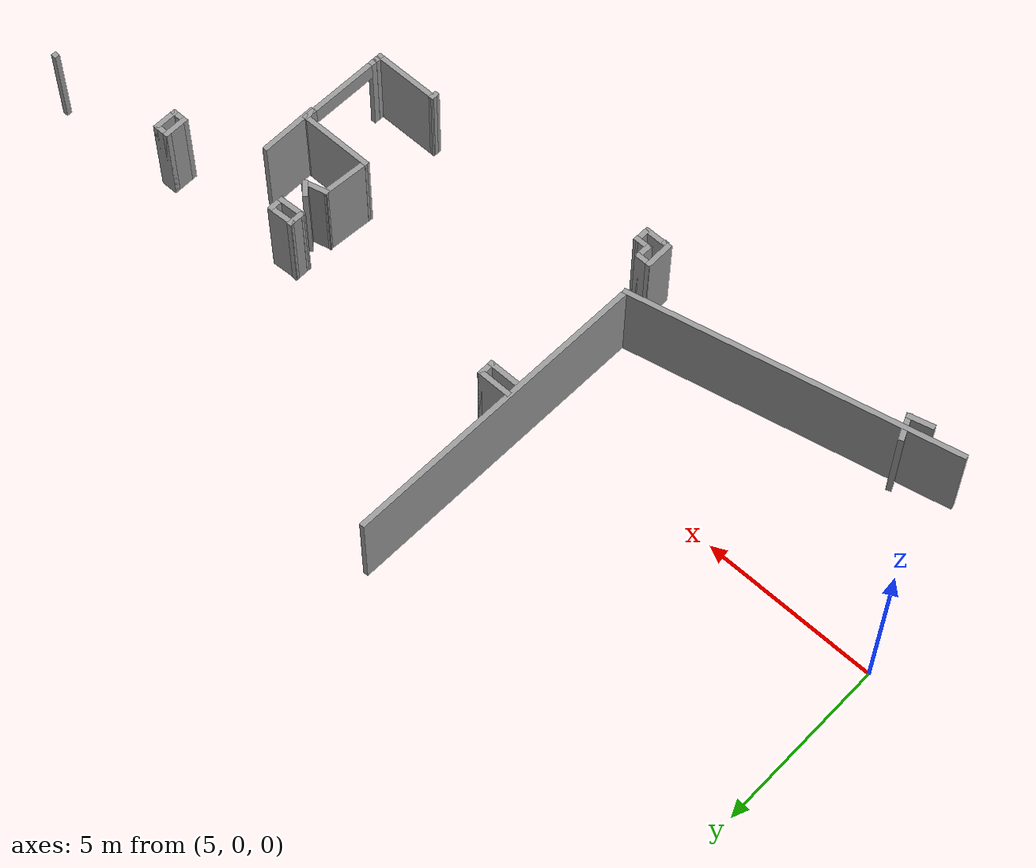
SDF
<sdf version="1.6">
 <model name="car_parking_underground_big_1">
  <pose>-9.36123 -7.37411 0 0 -0 0</pose>
  <link name="Wall_240">
   <collision name="Wall_240_Collision">
    <geometry><box><size>1 0.15 2.5</size></box></geometry>
    <pose>0 0 1.25 0 -0 0</pose>
   </collision>
   <visual name="Wall_240_Visual">
    <pose>0 0 1.25 0 -0 0</pose>
    <geometry><box><size>1 0.15 2.5</size></box></geometry>
    <material>
     <script><uri>file://media/materials/scripts/gazebo.material</uri><name>Gazebo/Grey</name></script>
     <ambient>1 1 1 1</ambient>
    </material>
    <meta><layer>0</layer></meta>
   </visual>
   <pose>25.3215 8.66077 0 0 -0 0</pose>
  </link>
  <link name="Wall_241">
   <collision name="Wall_241_Collision">
    <geometry><box><size>0.5 0.15 2.5</size></box></geometry>
    <pose>0 0 1.25 0 -0 0</pose>
   </collision>
   <visual name="Wall_241_Visual">
    <pose>0 0 1.25 0 -0 0</pose>
    <geometry><box><size>0.5 0.15 2.5</size></box></geometry>
    <material>
     <script><uri>file://media/materials/scripts/gazebo.material</uri><name>Gazebo/Grey</name></script>
     <ambient>1 1 1 1</ambient>
    </material>
    <meta><layer>0</layer></meta>
   </visual>
   <pose>25.7465 8.48577 0 0 -0 -1.5708</pose>
  </link>
  <link name="Wall_243">
   <collision name="Wall_243_Collision">
    <geometry><box><size>0.16 0.15 2.5</size></box></geometry>
    <pose>0 0 1.25 0 -0 0</pose>
   </collision>
   <visual name="Wall_243_Visual">
    <pose>0 0 1.25 0 -0 0</pose>
    <geometry><box><size>0.16 0.15 2.5</size></box></geometry>
    <material>
     <script><uri>file://media/materials/scripts/gazebo.material</uri><name>Gazebo/Grey</name></script>
     <ambient>1 1 1 1</ambient>
    </material>
    <meta><layer>0</layer></meta>
   </visual>
   <pose>40.3563 9.21528 0 0 -0 0</pose>
  </link>
  <link name="Wall_245">
   <collision name="Wall_245_Collision">
    <geometry><box><size>1 0.15 2.5</size></box></geometry>
    <pose>0 0 1.25 0 -0 0</pose>
   </collision>
   <visual name="Wall_245_Visual">
    <pose>0 0 1.25 0 -0 0</pose>
    <geometry><box><size>1 0.15 2.5</size></box></geometry>
    <material>
     <script><uri>file://media/materials/scripts/gazebo.material</uri><name>Gazebo/Grey</name></script>
     <ambient>1 1 1 1</ambient>
    </material>
    <meta><layer>0</layer></meta>
   </visual>
   <pose>25.3215 8.31077 0 0 -0 3.14159</pose>
  </link>
  <link name="Wall_268">
   <collision name="Wall_268_Collision">
    <geometry><box><size>0.15 0.15 2.5</size></box></geometry>
    <pose>0 0 1.25 0 -0 0</pose>
   </collision>
   <visual name="Wall_268_Visual">
    <pose>0 0 1.25 0 -0 0</pose>
    <geometry><box><size>0.15 0.15 2.5</size></box></geometry>
    <material>
     <script><uri>file://media/materials/scripts/gazebo.material</uri><name>Gazebo/Grey</name></script>
     <ambient>1 1 1 1</ambient>
    </material>
    <meta><layer>0</layer></meta>
   </visual>
   <pose>24.9942 2.81272 0 0 -0 0</pose>
  </link>
  <link name="Wall_269">
   <collision name="Wall_269_Collision">
    <geometry><box><size>0.15 0.15 2.5</size></box></geometry>
    <pose>0 0 1.25 0 -0 0</pose>
   </collision>
   <visual name="Wall_269_Visual">
    <pose>0 0 1.25 0 -0 0</pose>
    <geometry><box><size>0.15 0.15 2.5</size></box></geometry>
    <material>
     <script><uri>file://media/materials/scripts/gazebo.material</uri><name>Gazebo/Grey</name></script>
     <ambient>1 1 1 1</ambient>
    </material>
    <meta><layer>0</layer></meta>
   </visual>
   <pose>24.9942 2.81272 0 0 -0 0</pose>
  </link>
  <link name="Wall_270">
   <collision name="Wall_270_Collision">
    <geometry><box><size>0.15 0.15 2.5</size></box></geometry>
    <pose>0 0 1.25 0 -0 0</pose>
   </collision>
   <visual name="Wall_270_Visual">
    <pose>0 0 1.25 0 -0 0</pose>
    <geometry><box><size>0.15 0.15 2.5</size></box></geometry>
    <material>
     <script><uri>file://media/materials/scripts/gazebo.material</uri><name>Gazebo/Grey</name></script>
     <ambient>1 1 1 1</ambient>
    </material>
    <meta><layer>0</layer></meta>
   </visual>
   <pose>24.9942 2.81272 0 0 -0 0</pose>
  </link>
  <link name="Wall_272">
   <collision name="Wall_272_Collision">
    <geometry><box><size>0.5 0.15 2.5</size></box></geometry>
    <pose>0 0 1.25 0 -0 0</pose>
   </collision>
   <visual name="Wall_272_Visual">
    <pose>0 0 1.25 0 -0 0</pose>
    <geometry><box><size>0.5 0.15 2.5</size></box></geometry>
    <material>
     <script><uri>file://media/materials/scripts/gazebo.material</uri><name>Gazebo/Grey</name></script>
     <ambient>1 1 1 1</ambient>
    </material>
    <meta><layer>0</layer></meta>
   </visual>
   <pose>25.0518 3.53989 0 0 -0 0</pose>
  </link>
  <link name="Wall_273">
   <collision name="Wall_273_Collision">
    <geometry><box><size>0.5 0.15 2.5</size></box></geometry>
    <pose>0 0 1.25 0 -0 0</pose>
   </collision>
   <visual name="Wall_273_Visual">
    <pose>0 0 1.25 0 -0 0</pose>
    <geometry><box><size>0.5 0.15 2.5</size></box></geometry>
    <material>
     <script><uri>file://media/materials/scripts/gazebo.material</uri><name>Gazebo/Grey</name></script>
     <ambient>1 1 1 1</ambient>
    </material>
    <meta><layer>0</layer></meta>
   </visual>
   <pose>25.2268 3.36489 0 0 -0 -1.5708</pose>
  </link>
  <link name="Wall_274">
   <collision name="Wall_274_Collision">
    <geometry><box><size>0.5 0.15 2.5</size></box></geometry>
    <pose>0 0 1.25 0 -0 0</pose>
   </collision>
   <visual name="Wall_274_Visual">
    <pose>0 0 1.25 0 -0 0</pose>
    <geometry><box><size>0.5 0.15 2.5</size></box></geometry>
    <material>
     <script><uri>file://media/materials/scripts/gazebo.material</uri><name>Gazebo/Grey</name></script>
     <ambient>1 1 1 1</ambient>
    </material>
    <meta><layer>0</layer></meta>
   </visual>
   <pose>25.4018 3.18989 0 0 -0 0</pose>
  </link>
  <link name="Wall_275">
   <collision name="Wall_275_Collision">
    <geometry><box><size>0.506636 0.15 2.5</size></box></geometry>
    <pose>0 0 1.25 0 -0 0</pose>
   </collision>
   <visual name="Wall_275_Visual">
    <pose>0 0 1.25 0 -0 0</pose>
    <geometry><box><size>0.506636 0.15 2.5</size></box></geometry>
    <material>
     <script><uri>file://media/materials/scripts/gazebo.material</uri><name>Gazebo/Grey</name></script>
     <ambient>1 1 1 1</ambient>
    </material>
    <meta><layer>0</layer></meta>
   </visual>
   <pose>25.5735 3.0116 0 0 -0 -1.58923</pose>
  </link>
  <link name="Wall_276">
   <collision name="Wall_276_Collision">
    <geometry><box><size>0.75 0.15 2.5</size></box></geometry>
    <pose>0 0 1.25 0 -0 0</pose>
   </collision>
   <visual name="Wall_276_Visual">
    <pose>0 0 1.25 0 -0 0</pose>
    <geometry><box><size>0.75 0.15 2.5</size></box></geometry>
    <material>
     <script><uri>file://media/materials/scripts/gazebo.material</uri><name>Gazebo/Grey</name></script>
     <ambient>1 1 1 1</ambient>
    </material>
    <meta><layer>0</layer></meta>
   </visual>
   <pose>25.2703 2.83332 0 0 -0 3.14159</pose>
  </link>
  <link name="Wall_278">
   <collision name="Wall_278_Collision">
    <geometry><box><size>0.85 0.15 2.5</size></box></geometry>
    <pose>0 0 1.25 0 -0 0</pose>
   </collision>
   <visual name="Wall_278_Visual">
    <pose>0 0 1.25 0 -0 0</pose>
    <geometry><box><size>0.85 0.15 2.5</size></box></geometry>
    <material>
     <script><uri>file://media/materials/scripts/gazebo.material</uri><name>Gazebo/Grey</name></script>
     <ambient>1 1 1 1</ambient>
    </material>
    <meta><layer>0</layer></meta>
   </visual>
   <pose>24.8768 3.18989 0 0 -0 1.5708</pose>
  </link>
  <link name="Wall_285">
   <collision name="Wall_285_Collision">
    <geometry><box><size>0.816477 0.15 2.5</size></box></geometry>
    <pose>0 0 1.25 0 -0 0</pose>
   </collision>
   <visual name="Wall_285_Visual">
    <pose>0 0 1.25 0 -0 0</pose>
    <geometry><box><size>0.816477 0.15 2.5</size></box></geometry>
    <material>
     <script><uri>file://media/materials/scripts/gazebo.material</uri><name>Gazebo/Grey</name></script>
     <ambient>1 1 1 1</ambient>
    </material>
    <meta><layer>0</layer></meta>
   </visual>
   <pose>32.539 8.73883 0 0 -0 0.057232</pose>
  </link>
  <link name="Wall_286">
   <collision name="Wall_286_Collision">
    <geometry><box><size>0.5 0.15 2.5</size></box></geometry>
    <pose>0 0 1.25 0 -0 0</pose>
   </collision>
   <visual name="Wall_286_Visual">
    <pose>0 0 1.25 0 -0 0</pose>
    <geometry><box><size>0.5 0.15 2.5</size></box></geometry>
    <material>
     <script><uri>file://media/materials/scripts/gazebo.material</uri><name>Gazebo/Grey</name></script>
     <ambient>1 1 1 1</ambient>
    </material>
    <meta><layer>0</layer></meta>
   </visual>
   <pose>32.8868 8.56777 0 0 -0 -1.5708</pose>
  </link>
  <link name="Wall_287">
   <collision name="Wall_287_Collision">
    <geometry><box><size>0.816477 0.15 2.5</size></box></geometry>
    <pose>0 0 1.25 0 -0 0</pose>
   </collision>
   <visual name="Wall_287_Visual">
    <pose>0 0 1.25 0 -0 0</pose>
    <geometry><box><size>0.816477 0.15 2.5</size></box></geometry>
    <material>
     <script><uri>file://media/materials/scripts/gazebo.material</uri><name>Gazebo/Grey</name></script>
     <ambient>1 1 1 1</ambient>
    </material>
    <meta><layer>0</layer></meta>
   </visual>
   <pose>32.539 8.38884 0 0 -0 -3.08436</pose>
  </link>
  <link name="Wall_288">
   <collision name="Wall_288_Collision">
    <geometry><box><size>0.5 0.15 2.5</size></box></geometry>
    <pose>0 0 1.25 0 -0 0</pose>
   </collision>
   <visual name="Wall_288_Visual">
    <pose>0 0 1.25 0 -0 0</pose>
    <geometry><box><size>0.5 0.15 2.5</size></box></geometry>
    <material>
     <script><uri>file://media/materials/scripts/gazebo.material</uri><name>Gazebo/Grey</name></script>
     <ambient>1 1 1 1</ambient>
    </material>
    <meta><layer>0</layer></meta>
   </visual>
   <pose>32.2063 8.56777 0 0 -0 1.5708</pose>
  </link>
  <link name="Wall_29">
   <collision name="Wall_29_Collision">
    <geometry><box><size>9.34467 0.15 2.5</size></box></geometry>
    <pose>0 0 1.25 0 -0 0</pose>
   </collision>
   <visual name="Wall_29_Visual">
    <pose>0 0 1.25 0 -0 0</pose>
    <geometry><box><size>9.34467 0.15 2.5</size></box></geometry>
    <material>
     <script><uri>file://media/materials/scripts/gazebo.material</uri><name>Gazebo/Grey</name></script>
     <ambient>1 1 1 1</ambient>
    </material>
    <meta><layer>0</layer></meta>
   </visual>
   <pose>20.272 3.52745 0 0 -0 0.223578</pose>
  </link>
  <link name="Wall_295">
   <collision name="Wall_295_Collision">
    <geometry><box><size>0.5 0.15 2.5</size></box></geometry>
    <pose>0 0 1.25 0 -0 0</pose>
   </collision>
   <visual name="Wall_295_Visual">
    <pose>0 0 1.25 0 -0 0</pose>
    <geometry><box><size>0.5 0.15 2.5</size></box></geometry>
    <material>
     <script><uri>file://media/materials/scripts/gazebo.material</uri><name>Gazebo/Grey</name></script>
     <ambient>1 1 1 1</ambient>
    </material>
    <meta><layer>0</layer></meta>
   </visual>
   <pose>36.6126 8.97571 0 0 -0 0</pose>
  </link>
  <link name="Wall_296">
   <collision name="Wall_296_Collision">
    <geometry><box><size>0.75 0.15 2.5</size></box></geometry>
    <pose>0 0 1.25 0 -0 0</pose>
   </collision>
   <visual name="Wall_296_Visual">
    <pose>0 0 1.25 0 -0 0</pose>
    <geometry><box><size>0.75 0.15 2.5</size></box></geometry>
    <material>
     <script><uri>file://media/materials/scripts/gazebo.material</uri><name>Gazebo/Grey</name></script>
     <ambient>1 1 1 1</ambient>
    </material>
    <meta><layer>0</layer></meta>
   </visual>
   <pose>36.7876 8.67571 0 0 -0 -1.5708</pose>
  </link>
  <link name="Wall_297">
   <collision name="Wall_297_Collision">
    <geometry><box><size>0.5 0.15 2.5</size></box></geometry>
    <pose>0 0 1.25 0 -0 0</pose>
   </collision>
   <visual name="Wall_297_Visual">
    <pose>0 0 1.25 0 -0 0</pose>
    <geometry><box><size>0.5 0.15 2.5</size></box></geometry>
    <material>
     <script><uri>file://media/materials/scripts/gazebo.material</uri><name>Gazebo/Grey</name></script>
     <ambient>1 1 1 1</ambient>
    </material>
    <meta><layer>0</layer></meta>
   </visual>
   <pose>36.6126 8.37571 0 0 -0 3.14159</pose>
  </link>
  <link name="Wall_298">
   <collision name="Wall_298_Collision">
    <geometry><box><size>0.75 0.15 2.5</size></box></geometry>
    <pose>0 0 1.25 0 -0 0</pose>
   </collision>
   <visual name="Wall_298_Visual">
    <pose>0 0 1.25 0 -0 0</pose>
    <geometry><box><size>0.75 0.15 2.5</size></box></geometry>
    <material>
     <script><uri>file://media/materials/scripts/gazebo.material</uri><name>Gazebo/Grey</name></script>
     <ambient>1 1 1 1</ambient>
    </material>
    <meta><layer>0</layer></meta>
   </visual>
   <pose>36.4376 8.67571 0 0 -0 1.5708</pose>
  </link>
  <link name="Wall_30">
   <collision name="Wall_30_Collision">
    <geometry><box><size>9.14217 0.15 2.5</size></box></geometry>
    <pose>0 0 1.25 0 -0 0</pose>
   </collision>
   <visual name="Wall_30_Visual">
    <pose>0 0 1.25 0 -0 0</pose>
    <geometry><box><size>9.14217 0.15 2.5</size></box></geometry>
    <material>
     <script><uri>file://media/materials/scripts/gazebo.material</uri><name>Gazebo/Grey</name></script>
     <ambient>1 1 1 1</ambient>
    </material>
    <meta><layer>0</layer></meta>
   </visual>
   <pose>24.8429 9.07277 0 0 -0 1.55123</pose>
  </link>
  <link name="Wall_48">
   <collision name="Wall_48_Collision">
    <geometry><box><size>0.503553 0.15 2.5</size></box></geometry>
    <pose>0 0 1.25 0 -0 0</pose>
   </collision>
   <visual name="Wall_48_Visual">
    <pose>0 0 1.25 0 -0 0</pose>
    <geometry><box><size>0.503553 0.15 2.5</size></box></geometry>
    <material>
     <script><uri>file://media/materials/scripts/gazebo.material</uri><name>Gazebo/Grey</name></script>
     <ambient>1 1 1 1</ambient>
    </material>
    <meta><layer>0</layer></meta>
   </visual>
   <pose>32.6892 7.75476 0 0 -0 -0.785398</pose>
  </link>
  <link name="Wall_49">
   <collision name="Wall_49_Collision">
    <geometry><box><size>0.75 0.15 2.5</size></box></geometry>
    <pose>0 0 1.25 0 -0 0</pose>
   </collision>
   <visual name="Wall_49_Visual">
    <pose>0 0 1.25 0 -0 0</pose>
    <geometry><box><size>0.75 0.15 2.5</size></box></geometry>
    <material>
     <script><uri>file://media/materials/scripts/gazebo.material</uri><name>Gazebo/Grey</name></script>
     <ambient>1 1 1 1</ambient>
    </material>
    <meta><layer>0</layer></meta>
   </visual>
   <pose>32.5244 7.55211 0 0 -0 -2.87979</pose>
  </link>
  <link name="Wall_50">
   <collision name="Wall_50_Collision">
    <geometry><box><size>1.45778 0.15 2.5</size></box></geometry>
    <pose>0 0 1.25 0 -0 0</pose>
   </collision>
   <visual name="Wall_50_Visual">
    <pose>0 0 1.25 0 -0 0</pose>
    <geometry><box><size>1.45778 0.15 2.5</size></box></geometry>
    <material>
     <script><uri>file://media/materials/scripts/gazebo.material</uri><name>Gazebo/Grey</name></script>
     <ambient>1 1 1 1</ambient>
    </material>
    <meta><layer>0</layer></meta>
   </visual>
   <pose>32.1849 6.82246 0 0 -0 -1.64688</pose>
  </link>
  <link name="Wall_51">
   <collision name="Wall_51_Collision">
    <geometry><box><size>2.25 0.15 2.5</size></box></geometry>
    <pose>0 0 1.25 0 -0 0</pose>
   </collision>
   <visual name="Wall_51_Visual">
    <pose>0 0 1.25 0 -0 0</pose>
    <geometry><box><size>2.25 0.15 2.5</size></box></geometry>
    <material>
     <script><uri>file://media/materials/scripts/gazebo.material</uri><name>Gazebo/Grey</name></script>
     <ambient>1 1 1 1</ambient>
    </material>
    <meta><layer>0</layer></meta>
   </visual>
   <pose>33.1852 6.17046 0 0 -0 0</pose>
  </link>
  <link name="Wall_52">
   <pose>34.2176 4.83529 0 0 -0 -1.58397</pose>
   <visual name="Wall_52_Visual_0">
    <pose>-1.22434 0 1.25 0 -0 0</pose>
    <geometry><box><size>0.371915 0.15 2.5</size></box></geometry>
    <material>
     <script><uri>file://media/materials/scripts/gazebo.material</uri><name>Gazebo/Grey</name></script>
     <ambient>1 1 1 1</ambient>
    </material>
    <meta><layer>0</layer></meta>
   </visual>
   <collision name="Wall_52_Collision_0">
    <geometry><box><size>0.371915 0.15 2.5</size></box></geometry>
    <pose>-1.22434 0 1.25 0 -0 0</pose>
   </collision>
   <visual name="Wall_52_Visual_1">
    <pose>1.18596 0 1.25 0 -0 0</pose>
    <geometry><box><size>0.448674 0.15 2.5</size></box></geometry>
    <material>
     <script><uri>file://media/materials/scripts/gazebo.material</uri><name>Gazebo/Grey</name></script>
     <ambient>1 1 1 1</ambient>
    </material>
    <meta><layer>0</layer></meta>
   </visual>
   <collision name="Wall_52_Collision_1">
    <geometry><box><size>0.448674 0.15 2.5</size></box></geometry>
    <pose>1.18596 0 1.25 0 -0 0</pose>
   </collision>
   <visual name="Wall_52_Visual_2">
    <pose>-0.03838 0 2.25 0 -0 0</pose>
    <geometry><box><size>2 0.15 0.5</size></box></geometry>
    <material>
     <script><uri>file://media/materials/scripts/gazebo.material</uri><name>Gazebo/Grey</name></script>
     <ambient>1 1 1 1</ambient>
    </material>
    <meta><layer>0</layer></meta>
   </visual>
   <collision name="Wall_52_Collision_2">
    <geometry><box><size>2 0.15 0.5</size></box></geometry>
    <pose>-0.03838 0 2.25 0 -0 0</pose>
   </collision>
  </link>
  <link name="Wall_525">
   <collision name="Wall_525_Collision">
    <geometry><box><size>0.799386 0.15 2.5</size></box></geometry>
    <pose>0 0 1.25 0 -0 0</pose>
   </collision>
   <visual name="Wall_525_Visual">
    <pose>0 0 1.25 0 -0 0</pose>
    <geometry><box><size>0.799386 0.15 2.5</size></box></geometry>
    <material>
     <script><uri>file://media/materials/scripts/gazebo.material</uri><name>Gazebo/Grey</name></script>
     <ambient>1 1 1 1</ambient>
    </material>
    <meta><layer>0</layer></meta>
   </visual>
   <pose>17.3219 2.84405 0 0 -0 -1.15541</pose>
  </link>
  <link name="Wall_526">
   <collision name="Wall_526_Collision">
    <geometry><box><size>0.75 0.15 2.5</size></box></geometry>
    <pose>0 0 1.25 0 -0 0</pose>
   </collision>
   <visual name="Wall_526_Visual">
    <pose>0 0 1.25 0 -0 0</pose>
    <geometry><box><size>0.75 0.15 2.5</size></box></geometry>
    <material>
     <script><uri>file://media/materials/scripts/gazebo.material</uri><name>Gazebo/Grey</name></script>
     <ambient>1 1 1 1</ambient>
    </material>
    <meta><layer>0</layer></meta>
   </visual>
   <pose>17.148 2.46897 0 0 -0 -2.87979</pose>
  </link>
  <link name="Wall_53">
   <collision name="Wall_53_Collision">
    <geometry><box><size>0.285179 0.15 2.5</size></box></geometry>
    <pose>0 0 1.25 0 -0 0</pose>
   </collision>
   <visual name="Wall_53_Visual">
    <pose>0 0 1.25 0 -0 0</pose>
    <geometry><box><size>0.285179 0.15 2.5</size></box></geometry>
    <material>
     <script><uri>file://media/materials/scripts/gazebo.material</uri><name>Gazebo/Grey</name></script>
     <ambient>1 1 1 1</ambient>
    </material>
    <meta><layer>0</layer></meta>
   </visual>
   <pose>34.2 3.5677 0 0 -0 1.5708</pose>
  </link>
  <link name="Wall_54">
   <collision name="Wall_54_Collision">
    <geometry><box><size>0.25 0.15 2.5</size></box></geometry>
    <pose>0 0 1.25 0 -0 0</pose>
   </collision>
   <visual name="Wall_54_Visual">
    <pose>0 0 1.25 0 -0 0</pose>
    <geometry><box><size>0.25 0.15 2.5</size></box></geometry>
    <material>
     <script><uri>file://media/materials/scripts/gazebo.material</uri><name>Gazebo/Grey</name></script>
     <ambient>1 1 1 1</ambient>
    </material>
    <meta><layer>0</layer></meta>
   </visual>
   <pose>34.2 3.58529 0 0 -0 -1.5708</pose>
  </link>
  <link name="Wall_55">
   <collision name="Wall_55_Collision">
    <geometry><box><size>2.02705 0.15 2.5</size></box></geometry>
    <pose>0 0 1.25 0 -0 0</pose>
   </collision>
   <visual name="Wall_55_Visual">
    <pose>0 0 1.25 0 -0 0</pose>
    <geometry><box><size>2.02705 0.15 2.5</size></box></geometry>
    <material>
     <script><uri>file://media/materials/scripts/gazebo.material</uri><name>Gazebo/Grey</name></script>
     <ambient>1 1 1 1</ambient>
    </material>
    <meta><layer>0</layer></meta>
   </visual>
   <pose>33.2616 3.50324 0 0 -0 3.13825</pose>
  </link>
  <link name="Wall_56">
   <collision name="Wall_56_Collision">
    <geometry><box><size>0.25 0.15 2.5</size></box></geometry>
    <pose>0 0 1.25 0 -0 0</pose>
   </collision>
   <visual name="Wall_56_Visual">
    <pose>0 0 1.25 0 -0 0</pose>
    <geometry><box><size>0.25 0.15 2.5</size></box></geometry>
    <material>
     <script><uri>file://media/materials/scripts/gazebo.material</uri><name>Gazebo/Grey</name></script>
     <ambient>1 1 1 1</ambient>
    </material>
    <meta><layer>0</layer></meta>
   </visual>
   <pose>32.3232 3.45638 0 0 -0 -1.5708</pose>
  </link>
  <link name="Wall_671">
   <collision name="Wall_671_Collision">
    <geometry><box><size>1.75 0.15 2.5</size></box></geometry>
    <pose>0 0 1.25 0 -0 0</pose>
   </collision>
   <visual name="Wall_671_Visual">
    <pose>0 0 1.25 0 -0 0</pose>
    <geometry><box><size>1.75 0.15 2.5</size></box></geometry>
    <material>
     <script><uri>file://media/materials/scripts/gazebo.material</uri><name>Gazebo/Grey</name></script>
     <ambient>1 1 1 1</ambient>
    </material>
    <meta><layer>0</layer></meta>
   </visual>
   <pose>34.2803 6.74315 0 0 -0 -1.5708</pose>
  </link>
  <link name="Wall_673">
   <collision name="Wall_673_Collision">
    <geometry><box><size>0.15 0.15 2.5</size></box></geometry>
    <pose>0 0 1.25 0 -0 0</pose>
   </collision>
   <visual name="Wall_673_Visual">
    <pose>0 0 1.25 0 -0 0</pose>
    <geometry><box><size>0.15 0.15 2.5</size></box></geometry>
    <material>
     <script><uri>file://media/materials/scripts/gazebo.material</uri><name>Gazebo/Grey</name></script>
     <ambient>1 1 1 1</ambient>
    </material>
    <meta><layer>0</layer></meta>
   </visual>
   <pose>34.2437 5.94315 0 0 -0 0</pose>
  </link>
  <static>1</static>
 </model>
</sdf>
